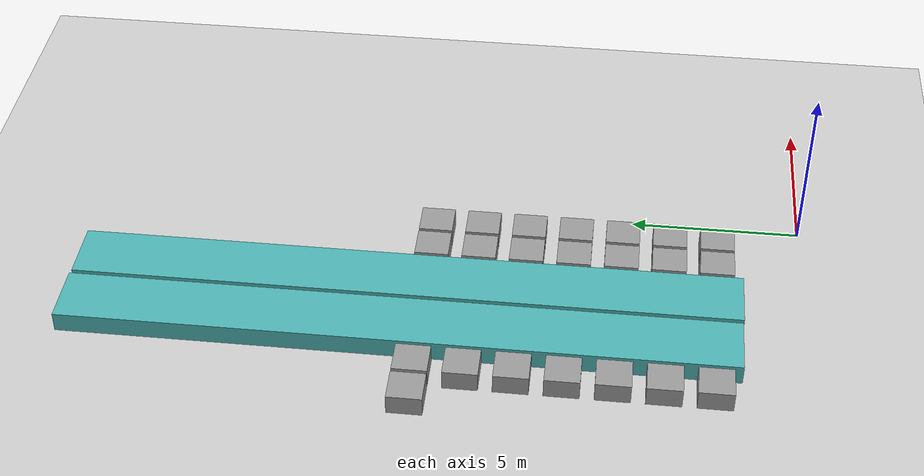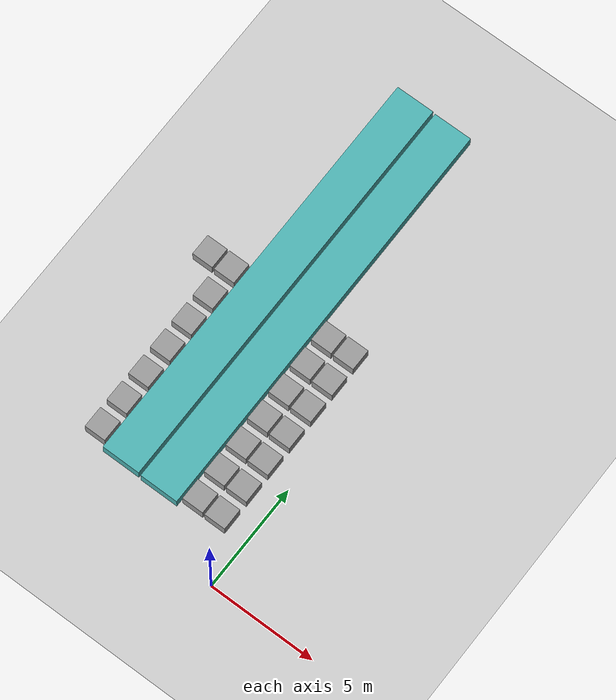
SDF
<sdf version="1.6">
 <world name="default">
  <model name="ground_plane">
   <static>1</static>
   <link name="link">
    <collision name="collision">
     <geometry><plane><normal>0 0 1</normal><size>100 100</size></plane></geometry>
     <surface>
      <contact><collide_bitmask>65535</collide_bitmask></contact>
      <friction><ode><mu>100</mu><mu2>50</mu2></ode></friction>
     </surface>
    </collision>
    <visual name="visual">
     <cast_shadows>0</cast_shadows>
     <geometry><plane><normal>0 0 1</normal><size>100 100</size></plane></geometry>
     <material>
      <script><uri>file://media/materials/scripts/gazebo.material</uri><name>Gazebo/Grey</name></script>
     </material>
    </visual>
   </link>
  </model>
  <model name="Estufa-objetos">
   <link name="link_0_clone_0">
    <inertial>
     <mass>1</mass>
     <inertia>
      <ixx>0.166667</ixx>
      <ixy>0</ixy>
      <ixz>0</ixz>
      <iyy>0.166667</iyy>
      <iyz>0</iyz>
      <izz>0.166667</izz>
     </inertia>
    </inertial>
    <pose>-1.4 -2.5 0.5 0 -0 0</pose>
    <visual name="visual">
     <geometry><box><size>1 1 0.6</size></box></geometry>
     <material>
      <lighting>1</lighting>
      <script><uri>file://media/materials/scripts/gazebo.material</uri><name>Gazebo/Grey</name></script>
      <shader type="vertex"><normal_map>__default__</normal_map></shader>
      <ambient>0.3 0.3 0.3 1</ambient>
      <diffuse>0.7 0.7 0.7 1</diffuse>
      <specular>0.01 0.01 0.01 1</specular>
      <emissive>0 0 0 1</emissive>
     </material>
    </visual>
    <collision name="collision">
     <geometry><box><size>1 1 0.6</size></box></geometry>
     <surface>
      <friction>
       <ode><mu>1</mu><mu2>1</mu2><fdir1>0 0 0</fdir1><slip1>0</slip1><slip2>0</slip2></ode>
       <torsional>
        <coefficient>1</coefficient>
        <patch_radius>0</patch_radius>
        <surface_radius>0</surface_radius>
        <use_patch_radius>1</use_patch_radius>
        <ode><slip>0</slip></ode>
       </torsional>
      </friction>
      <bounce><restitution_coefficient>0</restitution_coefficient><threshold>1e+06</threshold></bounce>
      <contact>
       <collide_without_contact>0</collide_without_contact>
       <collide_without_contact_bitmask>1</collide_without_contact_bitmask>
       <collide_bitmask>1</collide_bitmask>
       <ode>
        <soft_cfm>0</soft_cfm>
        <soft_erp>0.2</soft_erp>
        <kp>1e+13</kp>
        <kd>1</kd>
        <max_vel>0.01</max_vel>
        <min_depth>0</min_depth>
       </ode>
       <bullet>
        <split_impulse>1</split_impulse>
        <split_impulse_penetration_threshold>-0.01</split_impulse_penetration_threshold>
        <soft_cfm>0</soft_cfm>
        <soft_erp>0.2</soft_erp>
        <kp>1e+13</kp>
        <kd>1</kd>
       </bullet>
      </contact>
     </surface>
    </collision>
   </link>
   <link name="link_0_clone_1">
    <inertial>
     <mass>1</mass>
     <inertia>
      <ixx>0.166667</ixx>
      <ixy>0</ixy>
      <ixz>0</ixz>
      <iyy>0.166667</iyy>
      <iyz>0</iyz>
      <izz>0.166667</izz>
     </inertia>
    </inertial>
    <pose>-2.5 -2.5 0.5 0 -0 0</pose>
    <visual name="visual">
     <geometry><box><size>1 1 0.6</size></box></geometry>
     <material>
      <lighting>1</lighting>
      <script><uri>file://media/materials/scripts/gazebo.material</uri><name>Gazebo/Grey</name></script>
      <shader type="vertex"><normal_map>__default__</normal_map></shader>
      <ambient>0.3 0.3 0.3 1</ambient>
      <diffuse>0.7 0.7 0.7 1</diffuse>
      <specular>0.01 0.01 0.01 1</specular>
      <emissive>0 0 0 1</emissive>
     </material>
    </visual>
    <collision name="collision">
     <geometry><box><size>1 1 0.6</size></box></geometry>
     <surface>
      <friction>
       <ode><mu>1</mu><mu2>1</mu2><fdir1>0 0 0</fdir1><slip1>0</slip1><slip2>0</slip2></ode>
       <torsional>
        <coefficient>1</coefficient>
        <patch_radius>0</patch_radius>
        <surface_radius>0</surface_radius>
        <use_patch_radius>1</use_patch_radius>
        <ode><slip>0</slip></ode>
       </torsional>
      </friction>
      <bounce><restitution_coefficient>0</restitution_coefficient><threshold>1e+06</threshold></bounce>
      <contact>
       <collide_without_contact>0</collide_without_contact>
       <collide_without_contact_bitmask>1</collide_without_contact_bitmask>
       <collide_bitmask>1</collide_bitmask>
       <ode>
        <soft_cfm>0</soft_cfm>
        <soft_erp>0.2</soft_erp>
        <kp>1e+13</kp>
        <kd>1</kd>
        <max_vel>0.01</max_vel>
        <min_depth>0</min_depth>
       </ode>
       <bullet>
        <split_impulse>1</split_impulse>
        <split_impulse_penetration_threshold>-0.01</split_impulse_penetration_threshold>
        <soft_cfm>0</soft_cfm>
        <soft_erp>0.2</soft_erp>
        <kp>1e+13</kp>
        <kd>1</kd>
       </bullet>
      </contact>
     </surface>
    </collision>
   </link>
   <link name="link_0_clone_3_clone">
    <inertial>
     <mass>1</mass>
     <inertia>
      <ixx>0.166667</ixx>
      <ixy>0</ixy>
      <ixz>0</ixz>
      <iyy>0.166667</iyy>
      <iyz>0</iyz>
      <izz>0.166667</izz>
     </inertia>
    </inertial>
    <pose>-4 6.5 0.5 0 -0 0</pose>
    <visual name="visual">
     <geometry><box><size>1.8 19.5 0.6</size></box></geometry>
     <material>
      <lighting>1</lighting>
      <script><uri>file://media/materials/scripts/gazebo.material</uri><name>Gazebo/Grey</name></script>
      <shader type="vertex"><normal_map>__default__</normal_map></shader>
      <ambient>0.3 0.7 0.7 1</ambient>
      <diffuse>0.7 0.7 0.7 1</diffuse>
      <specular>0.01 0.01 0.01 1</specular>
      <emissive>0 0 0 1</emissive>
     </material>
    </visual>
    <collision name="collision">
     <geometry><box><size>1.8 19.5 0.6</size></box></geometry>
     <surface>
      <friction>
       <ode><mu>1</mu><mu2>1</mu2><fdir1>0 0 0</fdir1><slip1>0</slip1><slip2>0</slip2></ode>
       <torsional>
        <coefficient>1</coefficient>
        <patch_radius>0</patch_radius>
        <surface_radius>0</surface_radius>
        <use_patch_radius>1</use_patch_radius>
        <ode><slip>0</slip></ode>
       </torsional>
      </friction>
      <bounce><restitution_coefficient>0</restitution_coefficient><threshold>1e+06</threshold></bounce>
      <contact>
       <collide_without_contact>0</collide_without_contact>
       <collide_without_contact_bitmask>1</collide_without_contact_bitmask>
       <collide_bitmask>1</collide_bitmask>
       <ode>
        <soft_cfm>0</soft_cfm>
        <soft_erp>0.2</soft_erp>
        <kp>1e+13</kp>
        <kd>1</kd>
        <max_vel>0.01</max_vel>
        <min_depth>0</min_depth>
       </ode>
       <bullet>
        <split_impulse>1</split_impulse>
        <split_impulse_penetration_threshold>-0.01</split_impulse_penetration_threshold>
        <soft_cfm>0</soft_cfm>
        <soft_erp>0.2</soft_erp>
        <kp>1e+13</kp>
        <kd>1</kd>
       </bullet>
      </contact>
     </surface>
    </collision>
   </link>
   <link name="link_0_clone_clone_1">
    <inertial>
     <mass>1</mass>
     <inertia>
      <ixx>0.166667</ixx>
      <ixy>0</ixy>
      <ixz>0</ixz>
      <iyy>0.166667</iyy>
      <iyz>0</iyz>
      <izz>0.166667</izz>
     </inertia>
    </inertial>
    <pose>-1.4 -1.1 0.5 0 -0 0</pose>
    <visual name="visual">
     <geometry><box><size>1 1 0.6</size></box></geometry>
     <material>
      <lighting>1</lighting>
      <script><uri>file://media/materials/scripts/gazebo.material</uri><name>Gazebo/Grey</name></script>
      <shader type="vertex"><normal_map>__default__</normal_map></shader>
      <ambient>0.3 0.3 0.3 1</ambient>
      <diffuse>0.7 0.7 0.7 1</diffuse>
      <specular>0.01 0.01 0.01 1</specular>
      <emissive>0 0 0 1</emissive>
     </material>
    </visual>
    <collision name="collision">
     <geometry><box><size>1 1 0.6</size></box></geometry>
     <surface>
      <friction>
       <ode><mu>1</mu><mu2>1</mu2><fdir1>0 0 0</fdir1><slip1>0</slip1><slip2>0</slip2></ode>
       <torsional>
        <coefficient>1</coefficient>
        <patch_radius>0</patch_radius>
        <surface_radius>0</surface_radius>
        <use_patch_radius>1</use_patch_radius>
        <ode><slip>0</slip></ode>
       </torsional>
      </friction>
      <bounce><restitution_coefficient>0</restitution_coefficient><threshold>1e+06</threshold></bounce>
      <contact>
       <collide_without_contact>0</collide_without_contact>
       <collide_without_contact_bitmask>1</collide_without_contact_bitmask>
       <collide_bitmask>1</collide_bitmask>
       <ode>
        <soft_cfm>0</soft_cfm>
        <soft_erp>0.2</soft_erp>
        <kp>1e+13</kp>
        <kd>1</kd>
        <max_vel>0.01</max_vel>
        <min_depth>0</min_depth>
       </ode>
       <bullet>
        <split_impulse>1</split_impulse>
        <split_impulse_penetration_threshold>-0.01</split_impulse_penetration_threshold>
        <soft_cfm>0</soft_cfm>
        <soft_erp>0.2</soft_erp>
        <kp>1e+13</kp>
        <kd>1</kd>
       </bullet>
      </contact>
     </surface>
    </collision>
   </link>
   <link name="link_0_clone_clone_10">
    <inertial>
     <mass>1</mass>
     <inertia>
      <ixx>0.166667</ixx>
      <ixy>0</ixy>
      <ixz>0</ixz>
      <iyy>0.166667</iyy>
      <iyz>0</iyz>
      <izz>0.166667</izz>
     </inertia>
    </inertial>
    <pose>-1.4 1.7 0.5 0 -0 0</pose>
    <visual name="visual">
     <geometry><box><size>1 1 0.6</size></box></geometry>
     <material>
      <lighting>1</lighting>
      <script><uri>file://media/materials/scripts/gazebo.material</uri><name>Gazebo/Grey</name></script>
      <shader type="vertex"><normal_map>__default__</normal_map></shader>
      <ambient>0.3 0.3 0.3 1</ambient>
      <diffuse>0.7 0.7 0.7 1</diffuse>
      <specular>0.01 0.01 0.01 1</specular>
      <emissive>0 0 0 1</emissive>
     </material>
    </visual>
    <collision name="collision">
     <geometry><box><size>1 1 0.6</size></box></geometry>
     <surface>
      <friction>
       <ode><mu>1</mu><mu2>1</mu2><fdir1>0 0 0</fdir1><slip1>0</slip1><slip2>0</slip2></ode>
       <torsional>
        <coefficient>1</coefficient>
        <patch_radius>0</patch_radius>
        <surface_radius>0</surface_radius>
        <use_patch_radius>1</use_patch_radius>
        <ode><slip>0</slip></ode>
       </torsional>
      </friction>
      <bounce><restitution_coefficient>0</restitution_coefficient><threshold>1e+06</threshold></bounce>
      <contact>
       <collide_without_contact>0</collide_without_contact>
       <collide_without_contact_bitmask>1</collide_without_contact_bitmask>
       <collide_bitmask>1</collide_bitmask>
       <ode>
        <soft_cfm>0</soft_cfm>
        <soft_erp>0.2</soft_erp>
        <kp>1e+13</kp>
        <kd>1</kd>
        <max_vel>0.01</max_vel>
        <min_depth>0</min_depth>
       </ode>
       <bullet>
        <split_impulse>1</split_impulse>
        <split_impulse_penetration_threshold>-0.01</split_impulse_penetration_threshold>
        <soft_cfm>0</soft_cfm>
        <soft_erp>0.2</soft_erp>
        <kp>1e+13</kp>
        <kd>1</kd>
       </bullet>
      </contact>
     </surface>
    </collision>
   </link>
   <link name="link_0_clone_clone_11">
    <inertial>
     <mass>1</mass>
     <inertia>
      <ixx>0.166667</ixx>
      <ixy>0</ixy>
      <ixz>0</ixz>
      <iyy>0.166667</iyy>
      <iyz>0</iyz>
      <izz>0.166667</izz>
     </inertia>
    </inertial>
    <pose>-2.5 1.7 0.5 0 -0 0</pose>
    <visual name="visual">
     <geometry><box><size>1 1 0.6</size></box></geometry>
     <material>
      <lighting>1</lighting>
      <script><uri>file://media/materials/scripts/gazebo.material</uri><name>Gazebo/Grey</name></script>
      <shader type="vertex"><normal_map>__default__</normal_map></shader>
      <ambient>0.3 0.3 0.3 1</ambient>
      <diffuse>0.7 0.7 0.7 1</diffuse>
      <specular>0.01 0.01 0.01 1</specular>
      <emissive>0 0 0 1</emissive>
     </material>
    </visual>
    <collision name="collision">
     <geometry><box><size>1 1 0.6</size></box></geometry>
     <surface>
      <friction>
       <ode><mu>1</mu><mu2>1</mu2><fdir1>0 0 0</fdir1><slip1>0</slip1><slip2>0</slip2></ode>
       <torsional>
        <coefficient>1</coefficient>
        <patch_radius>0</patch_radius>
        <surface_radius>0</surface_radius>
        <use_patch_radius>1</use_patch_radius>
        <ode><slip>0</slip></ode>
       </torsional>
      </friction>
      <bounce><restitution_coefficient>0</restitution_coefficient><threshold>1e+06</threshold></bounce>
      <contact>
       <collide_without_contact>0</collide_without_contact>
       <collide_without_contact_bitmask>1</collide_without_contact_bitmask>
       <collide_bitmask>1</collide_bitmask>
       <ode>
        <soft_cfm>0</soft_cfm>
        <soft_erp>0.2</soft_erp>
        <kp>1e+13</kp>
        <kd>1</kd>
        <max_vel>0.01</max_vel>
        <min_depth>0</min_depth>
       </ode>
       <bullet>
        <split_impulse>1</split_impulse>
        <split_impulse_penetration_threshold>-0.01</split_impulse_penetration_threshold>
        <soft_cfm>0</soft_cfm>
        <soft_erp>0.2</soft_erp>
        <kp>1e+13</kp>
        <kd>1</kd>
       </bullet>
      </contact>
     </surface>
    </collision>
   </link>
   <link name="link_0_clone_clone_14">
    <inertial>
     <mass>1</mass>
     <inertia>
      <ixx>0.166667</ixx>
      <ixy>0</ixy>
      <ixz>0</ixz>
      <iyy>0.166667</iyy>
      <iyz>0</iyz>
      <izz>0.166667</izz>
     </inertia>
    </inertial>
    <pose>-1.4 3.1 0.5 0 -0 0</pose>
    <visual name="visual">
     <geometry><box><size>1 1 0.6</size></box></geometry>
     <material>
      <lighting>1</lighting>
      <script><uri>file://media/materials/scripts/gazebo.material</uri><name>Gazebo/Grey</name></script>
      <shader type="vertex"><normal_map>__default__</normal_map></shader>
      <ambient>0.3 0.3 0.3 1</ambient>
      <diffuse>0.7 0.7 0.7 1</diffuse>
      <specular>0.01 0.01 0.01 1</specular>
      <emissive>0 0 0 1</emissive>
     </material>
    </visual>
    <collision name="collision">
     <geometry><box><size>1 1 0.6</size></box></geometry>
     <surface>
      <friction>
       <ode><mu>1</mu><mu2>1</mu2><fdir1>0 0 0</fdir1><slip1>0</slip1><slip2>0</slip2></ode>
       <torsional>
        <coefficient>1</coefficient>
        <patch_radius>0</patch_radius>
        <surface_radius>0</surface_radius>
        <use_patch_radius>1</use_patch_radius>
        <ode><slip>0</slip></ode>
       </torsional>
      </friction>
      <bounce><restitution_coefficient>0</restitution_coefficient><threshold>1e+06</threshold></bounce>
      <contact>
       <collide_without_contact>0</collide_without_contact>
       <collide_without_contact_bitmask>1</collide_without_contact_bitmask>
       <collide_bitmask>1</collide_bitmask>
       <ode>
        <soft_cfm>0</soft_cfm>
        <soft_erp>0.2</soft_erp>
        <kp>1e+13</kp>
        <kd>1</kd>
        <max_vel>0.01</max_vel>
        <min_depth>0</min_depth>
       </ode>
       <bullet>
        <split_impulse>1</split_impulse>
        <split_impulse_penetration_threshold>-0.01</split_impulse_penetration_threshold>
        <soft_cfm>0</soft_cfm>
        <soft_erp>0.2</soft_erp>
        <kp>1e+13</kp>
        <kd>1</kd>
       </bullet>
      </contact>
     </surface>
    </collision>
   </link>
   <link name="link_0_clone_clone_15">
    <inertial>
     <mass>1</mass>
     <inertia>
      <ixx>0.166667</ixx>
      <ixy>0</ixy>
      <ixz>0</ixz>
      <iyy>0.166667</iyy>
      <iyz>0</iyz>
      <izz>0.166667</izz>
     </inertia>
    </inertial>
    <pose>-2.5 3.1 0.5 0 -0 0</pose>
    <visual name="visual">
     <geometry><box><size>1 1 0.6</size></box></geometry>
     <material>
      <lighting>1</lighting>
      <script><uri>file://media/materials/scripts/gazebo.material</uri><name>Gazebo/Grey</name></script>
      <shader type="vertex"><normal_map>__default__</normal_map></shader>
      <ambient>0.3 0.3 0.3 1</ambient>
      <diffuse>0.7 0.7 0.7 1</diffuse>
      <specular>0.01 0.01 0.01 1</specular>
      <emissive>0 0 0 1</emissive>
     </material>
    </visual>
    <collision name="collision">
     <geometry><box><size>1 1 0.6</size></box></geometry>
     <surface>
      <friction>
       <ode><mu>1</mu><mu2>1</mu2><fdir1>0 0 0</fdir1><slip1>0</slip1><slip2>0</slip2></ode>
       <torsional>
        <coefficient>1</coefficient>
        <patch_radius>0</patch_radius>
        <surface_radius>0</surface_radius>
        <use_patch_radius>1</use_patch_radius>
        <ode><slip>0</slip></ode>
       </torsional>
      </friction>
      <bounce><restitution_coefficient>0</restitution_coefficient><threshold>1e+06</threshold></bounce>
      <contact>
       <collide_without_contact>0</collide_without_contact>
       <collide_without_contact_bitmask>1</collide_without_contact_bitmask>
       <collide_bitmask>1</collide_bitmask>
       <ode>
        <soft_cfm>0</soft_cfm>
        <soft_erp>0.2</soft_erp>
        <kp>1e+13</kp>
        <kd>1</kd>
        <max_vel>0.01</max_vel>
        <min_depth>0</min_depth>
       </ode>
       <bullet>
        <split_impulse>1</split_impulse>
        <split_impulse_penetration_threshold>-0.01</split_impulse_penetration_threshold>
        <soft_cfm>0</soft_cfm>
        <soft_erp>0.2</soft_erp>
        <kp>1e+13</kp>
        <kd>1</kd>
       </bullet>
      </contact>
     </surface>
    </collision>
   </link>
   <link name="link_0_clone_clone_18">
    <inertial>
     <mass>1</mass>
     <inertia>
      <ixx>0.166667</ixx>
      <ixy>0</ixy>
      <ixz>0</ixz>
      <iyy>0.166667</iyy>
      <iyz>0</iyz>
      <izz>0.166667</izz>
     </inertia>
    </inertial>
    <pose>-1.4 4.5 0.5 0 -0 0</pose>
    <visual name="visual">
     <geometry><box><size>1 1 0.6</size></box></geometry>
     <material>
      <lighting>1</lighting>
      <script><uri>file://media/materials/scripts/gazebo.material</uri><name>Gazebo/Grey</name></script>
      <shader type="vertex"><normal_map>__default__</normal_map></shader>
      <ambient>0.3 0.3 0.3 1</ambient>
      <diffuse>0.7 0.7 0.7 1</diffuse>
      <specular>0.01 0.01 0.01 1</specular>
      <emissive>0 0 0 1</emissive>
     </material>
    </visual>
    <collision name="collision">
     <geometry><box><size>1 1 0.6</size></box></geometry>
     <surface>
      <friction>
       <ode><mu>1</mu><mu2>1</mu2><fdir1>0 0 0</fdir1><slip1>0</slip1><slip2>0</slip2></ode>
       <torsional>
        <coefficient>1</coefficient>
        <patch_radius>0</patch_radius>
        <surface_radius>0</surface_radius>
        <use_patch_radius>1</use_patch_radius>
        <ode><slip>0</slip></ode>
       </torsional>
      </friction>
      <bounce><restitution_coefficient>0</restitution_coefficient><threshold>1e+06</threshold></bounce>
      <contact>
       <collide_without_contact>0</collide_without_contact>
       <collide_without_contact_bitmask>1</collide_without_contact_bitmask>
       <collide_bitmask>1</collide_bitmask>
       <ode>
        <soft_cfm>0</soft_cfm>
        <soft_erp>0.2</soft_erp>
        <kp>1e+13</kp>
        <kd>1</kd>
        <max_vel>0.01</max_vel>
        <min_depth>0</min_depth>
       </ode>
       <bullet>
        <split_impulse>1</split_impulse>
        <split_impulse_penetration_threshold>-0.01</split_impulse_penetration_threshold>
        <soft_cfm>0</soft_cfm>
        <soft_erp>0.2</soft_erp>
        <kp>1e+13</kp>
        <kd>1</kd>
       </bullet>
      </contact>
     </surface>
    </collision>
   </link>
   <link name="link_0_clone_clone_19">
    <inertial>
     <mass>1</mass>
     <inertia>
      <ixx>0.166667</ixx>
      <ixy>0</ixy>
      <ixz>0</ixz>
      <iyy>0.166667</iyy>
      <iyz>0</iyz>
      <izz>0.166667</izz>
     </inertia>
    </inertial>
    <pose>-2.5 4.5 0.5 0 -0 0</pose>
    <visual name="visual">
     <geometry><box><size>1 1 0.6</size></box></geometry>
     <material>
      <lighting>1</lighting>
      <script><uri>file://media/materials/scripts/gazebo.material</uri><name>Gazebo/Grey</name></script>
      <shader type="vertex"><normal_map>__default__</normal_map></shader>
      <ambient>0.3 0.3 0.3 1</ambient>
      <diffuse>0.7 0.7 0.7 1</diffuse>
      <specular>0.01 0.01 0.01 1</specular>
      <emissive>0 0 0 1</emissive>
     </material>
    </visual>
    <collision name="collision">
     <geometry><box><size>1 1 0.6</size></box></geometry>
     <surface>
      <friction>
       <ode><mu>1</mu><mu2>1</mu2><fdir1>0 0 0</fdir1><slip1>0</slip1><slip2>0</slip2></ode>
       <torsional>
        <coefficient>1</coefficient>
        <patch_radius>0</patch_radius>
        <surface_radius>0</surface_radius>
        <use_patch_radius>1</use_patch_radius>
        <ode><slip>0</slip></ode>
       </torsional>
      </friction>
      <bounce><restitution_coefficient>0</restitution_coefficient><threshold>1e+06</threshold></bounce>
      <contact>
       <collide_without_contact>0</collide_without_contact>
       <collide_without_contact_bitmask>1</collide_without_contact_bitmask>
       <collide_bitmask>1</collide_bitmask>
       <ode>
        <soft_cfm>0</soft_cfm>
        <soft_erp>0.2</soft_erp>
        <kp>1e+13</kp>
        <kd>1</kd>
        <max_vel>0.01</max_vel>
        <min_depth>0</min_depth>
       </ode>
       <bullet>
        <split_impulse>1</split_impulse>
        <split_impulse_penetration_threshold>-0.01</split_impulse_penetration_threshold>
        <soft_cfm>0</soft_cfm>
        <soft_erp>0.2</soft_erp>
        <kp>1e+13</kp>
        <kd>1</kd>
       </bullet>
      </contact>
     </surface>
    </collision>
   </link>
   <link name="link_0_clone_clone_22">
    <inertial>
     <mass>1</mass>
     <inertia>
      <ixx>0.166667</ixx>
      <ixy>0</ixy>
      <ixz>0</ixz>
      <iyy>0.166667</iyy>
      <iyz>0</iyz>
      <izz>0.166667</izz>
     </inertia>
    </inertial>
    <pose>-1.4 5.9 0.5 0 -0 0</pose>
    <visual name="visual">
     <geometry><box><size>1 1 0.6</size></box></geometry>
     <material>
      <lighting>1</lighting>
      <script><uri>file://media/materials/scripts/gazebo.material</uri><name>Gazebo/Grey</name></script>
      <shader type="vertex"><normal_map>__default__</normal_map></shader>
      <ambient>0.3 0.3 0.3 1</ambient>
      <diffuse>0.7 0.7 0.7 1</diffuse>
      <specular>0.01 0.01 0.01 1</specular>
      <emissive>0 0 0 1</emissive>
     </material>
    </visual>
    <collision name="collision">
     <geometry><box><size>1 1 0.6</size></box></geometry>
     <surface>
      <friction>
       <ode><mu>1</mu><mu2>1</mu2><fdir1>0 0 0</fdir1><slip1>0</slip1><slip2>0</slip2></ode>
       <torsional>
        <coefficient>1</coefficient>
        <patch_radius>0</patch_radius>
        <surface_radius>0</surface_radius>
        <use_patch_radius>1</use_patch_radius>
        <ode><slip>0</slip></ode>
       </torsional>
      </friction>
      <bounce><restitution_coefficient>0</restitution_coefficient><threshold>1e+06</threshold></bounce>
      <contact>
       <collide_without_contact>0</collide_without_contact>
       <collide_without_contact_bitmask>1</collide_without_contact_bitmask>
       <collide_bitmask>1</collide_bitmask>
       <ode>
        <soft_cfm>0</soft_cfm>
        <soft_erp>0.2</soft_erp>
        <kp>1e+13</kp>
        <kd>1</kd>
        <max_vel>0.01</max_vel>
        <min_depth>0</min_depth>
       </ode>
       <bullet>
        <split_impulse>1</split_impulse>
        <split_impulse_penetration_threshold>-0.01</split_impulse_penetration_threshold>
        <soft_cfm>0</soft_cfm>
        <soft_erp>0.2</soft_erp>
        <kp>1e+13</kp>
        <kd>1</kd>
       </bullet>
      </contact>
     </surface>
    </collision>
   </link>
   <link name="link_0_clone_clone_23">
    <inertial>
     <mass>1</mass>
     <inertia>
      <ixx>0.166667</ixx>
      <ixy>0</ixy>
      <ixz>0</ixz>
      <iyy>0.166667</iyy>
      <iyz>0</iyz>
      <izz>0.166667</izz>
     </inertia>
    </inertial>
    <pose>-2.5 5.9 0.5 0 -0 0</pose>
    <visual name="visual">
     <geometry><box><size>1 1 0.6</size></box></geometry>
     <material>
      <lighting>1</lighting>
      <script><uri>file://media/materials/scripts/gazebo.material</uri><name>Gazebo/Grey</name></script>
      <shader type="vertex"><normal_map>__default__</normal_map></shader>
      <ambient>0.3 0.3 0.3 1</ambient>
      <diffuse>0.7 0.7 0.7 1</diffuse>
      <specular>0.01 0.01 0.01 1</specular>
      <emissive>0 0 0 1</emissive>
     </material>
    </visual>
    <collision name="collision">
     <geometry><box><size>1 1 0.6</size></box></geometry>
     <surface>
      <friction>
       <ode><mu>1</mu><mu2>1</mu2><fdir1>0 0 0</fdir1><slip1>0</slip1><slip2>0</slip2></ode>
       <torsional>
        <coefficient>1</coefficient>
        <patch_radius>0</patch_radius>
        <surface_radius>0</surface_radius>
        <use_patch_radius>1</use_patch_radius>
        <ode><slip>0</slip></ode>
       </torsional>
      </friction>
      <bounce><restitution_coefficient>0</restitution_coefficient><threshold>1e+06</threshold></bounce>
      <contact>
       <collide_without_contact>0</collide_without_contact>
       <collide_without_contact_bitmask>1</collide_without_contact_bitmask>
       <collide_bitmask>1</collide_bitmask>
       <ode>
        <soft_cfm>0</soft_cfm>
        <soft_erp>0.2</soft_erp>
        <kp>1e+13</kp>
        <kd>1</kd>
        <max_vel>0.01</max_vel>
        <min_depth>0</min_depth>
       </ode>
       <bullet>
        <split_impulse>1</split_impulse>
        <split_impulse_penetration_threshold>-0.01</split_impulse_penetration_threshold>
        <soft_cfm>0</soft_cfm>
        <soft_erp>0.2</soft_erp>
        <kp>1e+13</kp>
        <kd>1</kd>
       </bullet>
      </contact>
     </surface>
    </collision>
   </link>
   <link name="link_0_clone_clone_3">
    <inertial>
     <mass>1</mass>
     <inertia>
      <ixx>0.166667</ixx>
      <ixy>0</ixy>
      <ixz>0</ixz>
      <iyy>0.166667</iyy>
      <iyz>0</iyz>
      <izz>0.166667</izz>
     </inertia>
    </inertial>
    <pose>-2.5 -1.1 0.5 0 -0 0</pose>
    <visual name="visual">
     <geometry><box><size>1 1 0.6</size></box></geometry>
     <material>
      <lighting>1</lighting>
      <script><uri>file://media/materials/scripts/gazebo.material</uri><name>Gazebo/Grey</name></script>
      <shader type="vertex"><normal_map>__default__</normal_map></shader>
      <ambient>0.3 0.3 0.3 1</ambient>
      <diffuse>0.7 0.7 0.7 1</diffuse>
      <specular>0.01 0.01 0.01 1</specular>
      <emissive>0 0 0 1</emissive>
     </material>
    </visual>
    <collision name="collision">
     <geometry><box><size>1 1 0.6</size></box></geometry>
     <surface>
      <friction>
       <ode><mu>1</mu><mu2>1</mu2><fdir1>0 0 0</fdir1><slip1>0</slip1><slip2>0</slip2></ode>
       <torsional>
        <coefficient>1</coefficient>
        <patch_radius>0</patch_radius>
        <surface_radius>0</surface_radius>
        <use_patch_radius>1</use_patch_radius>
        <ode><slip>0</slip></ode>
       </torsional>
      </friction>
      <bounce><restitution_coefficient>0</restitution_coefficient><threshold>1e+06</threshold></bounce>
      <contact>
       <collide_without_contact>0</collide_without_contact>
       <collide_without_contact_bitmask>1</collide_without_contact_bitmask>
       <collide_bitmask>1</collide_bitmask>
       <ode>
        <soft_cfm>0</soft_cfm>
        <soft_erp>0.2</soft_erp>
        <kp>1e+13</kp>
        <kd>1</kd>
        <max_vel>0.01</max_vel>
        <min_depth>0</min_depth>
       </ode>
       <bullet>
        <split_impulse>1</split_impulse>
        <split_impulse_penetration_threshold>-0.01</split_impulse_penetration_threshold>
        <soft_cfm>0</soft_cfm>
        <soft_erp>0.2</soft_erp>
        <kp>1e+13</kp>
        <kd>1</kd>
       </bullet>
      </contact>
     </surface>
    </collision>
   </link>
   <link name="link_0_clone_clone_6">
    <inertial>
     <mass>1</mass>
     <inertia>
      <ixx>0.166667</ixx>
      <ixy>0</ixy>
      <ixz>0</ixz>
      <iyy>0.166667</iyy>
      <iyz>0</iyz>
      <izz>0.166667</izz>
     </inertia>
    </inertial>
    <pose>-1.4 0.3 0.5 0 -0 0</pose>
    <visual name="visual">
     <geometry><box><size>1 1 0.6</size></box></geometry>
     <material>
      <lighting>1</lighting>
      <script><uri>file://media/materials/scripts/gazebo.material</uri><name>Gazebo/Grey</name></script>
      <shader type="vertex"><normal_map>__default__</normal_map></shader>
      <ambient>0.3 0.3 0.3 1</ambient>
      <diffuse>0.7 0.7 0.7 1</diffuse>
      <specular>0.01 0.01 0.01 1</specular>
      <emissive>0 0 0 1</emissive>
     </material>
    </visual>
    <collision name="collision">
     <geometry><box><size>1 1 0.6</size></box></geometry>
     <surface>
      <friction>
       <ode><mu>1</mu><mu2>1</mu2><fdir1>0 0 0</fdir1><slip1>0</slip1><slip2>0</slip2></ode>
       <torsional>
        <coefficient>1</coefficient>
        <patch_radius>0</patch_radius>
        <surface_radius>0</surface_radius>
        <use_patch_radius>1</use_patch_radius>
        <ode><slip>0</slip></ode>
       </torsional>
      </friction>
      <bounce><restitution_coefficient>0</restitution_coefficient><threshold>1e+06</threshold></bounce>
      <contact>
       <collide_without_contact>0</collide_without_contact>
       <collide_without_contact_bitmask>1</collide_without_contact_bitmask>
       <collide_bitmask>1</collide_bitmask>
       <ode>
        <soft_cfm>0</soft_cfm>
        <soft_erp>0.2</soft_erp>
        <kp>1e+13</kp>
        <kd>1</kd>
        <max_vel>0.01</max_vel>
        <min_depth>0</min_depth>
       </ode>
       <bullet>
        <split_impulse>1</split_impulse>
        <split_impulse_penetration_threshold>-0.01</split_impulse_penetration_threshold>
        <soft_cfm>0</soft_cfm>
        <soft_erp>0.2</soft_erp>
        <kp>1e+13</kp>
        <kd>1</kd>
       </bullet>
      </contact>
     </surface>
    </collision>
   </link>
   <link name="link_0_clone_clone_7">
    <inertial>
     <mass>1</mass>
     <inertia>
      <ixx>0.166667</ixx>
      <ixy>0</ixy>
      <ixz>0</ixz>
      <iyy>0.166667</iyy>
      <iyz>0</iyz>
      <izz>0.166667</izz>
     </inertia>
    </inertial>
    <pose>-2.5 0.3 0.5 0 -0 0</pose>
    <visual name="visual">
     <geometry><box><size>1 1 0.6</size></box></geometry>
     <material>
      <lighting>1</lighting>
      <script><uri>file://media/materials/scripts/gazebo.material</uri><name>Gazebo/Grey</name></script>
      <shader type="vertex"><normal_map>__default__</normal_map></shader>
      <ambient>0.3 0.3 0.3 1</ambient>
      <diffuse>0.7 0.7 0.7 1</diffuse>
      <specular>0.01 0.01 0.01 1</specular>
      <emissive>0 0 0 1</emissive>
     </material>
    </visual>
    <collision name="collision">
     <geometry><box><size>1 1 0.6</size></box></geometry>
     <surface>
      <friction>
       <ode><mu>1</mu><mu2>1</mu2><fdir1>0 0 0</fdir1><slip1>0</slip1><slip2>0</slip2></ode>
       <torsional>
        <coefficient>1</coefficient>
        <patch_radius>0</patch_radius>
        <surface_radius>0</surface_radius>
        <use_patch_radius>1</use_patch_radius>
        <ode><slip>0</slip></ode>
       </torsional>
      </friction>
      <bounce><restitution_coefficient>0</restitution_coefficient><threshold>1e+06</threshold></bounce>
      <contact>
       <collide_without_contact>0</collide_without_contact>
       <collide_without_contact_bitmask>1</collide_without_contact_bitmask>
       <collide_bitmask>1</collide_bitmask>
       <ode>
        <soft_cfm>0</soft_cfm>
        <soft_erp>0.2</soft_erp>
        <kp>1e+13</kp>
        <kd>1</kd>
        <max_vel>0.01</max_vel>
        <min_depth>0</min_depth>
       </ode>
       <bullet>
        <split_impulse>1</split_impulse>
        <split_impulse_penetration_threshold>-0.01</split_impulse_penetration_threshold>
        <soft_cfm>0</soft_cfm>
        <soft_erp>0.2</soft_erp>
        <kp>1e+13</kp>
        <kd>1</kd>
       </bullet>
      </contact>
     </surface>
    </collision>
   </link>
   <static>1</static>
   <pose>0.033468 4.9867 0 0 -0 0</pose>
  </model>
  <model name="Estufa-objetos_1">
   <link name="link_0_clone">
    <inertial>
     <mass>1</mass>
     <inertia>
      <ixx>0.166667</ixx>
      <ixy>0</ixy>
      <ixz>0</ixz>
      <iyy>0.166667</iyy>
      <iyz>0</iyz>
      <izz>0.166667</izz>
     </inertia>
    </inertial>
    <pose>2.5 -2.5 0.5 0 -0 0</pose>
    <visual name="visual">
     <geometry><box><size>1 1 0.6</size></box></geometry>
     <material>
      <lighting>1</lighting>
      <script><uri>file://media/materials/scripts/gazebo.material</uri><name>Gazebo/Grey</name></script>
      <shader type="vertex"><normal_map>__default__</normal_map></shader>
      <ambient>0.3 0.3 0.3 1</ambient>
      <diffuse>0.7 0.7 0.7 1</diffuse>
      <specular>0.01 0.01 0.01 1</specular>
      <emissive>0 0 0 1</emissive>
     </material>
    </visual>
    <collision name="collision">
     <geometry><box><size>1 1 0.6</size></box></geometry>
     <surface>
      <friction>
       <ode><mu>1</mu><mu2>1</mu2><fdir1>0 0 0</fdir1><slip1>0</slip1><slip2>0</slip2></ode>
       <torsional>
        <coefficient>1</coefficient>
        <patch_radius>0</patch_radius>
        <surface_radius>0</surface_radius>
        <use_patch_radius>1</use_patch_radius>
        <ode><slip>0</slip></ode>
       </torsional>
      </friction>
      <bounce><restitution_coefficient>0</restitution_coefficient><threshold>1e+06</threshold></bounce>
      <contact>
       <collide_without_contact>0</collide_without_contact>
       <collide_without_contact_bitmask>1</collide_without_contact_bitmask>
       <collide_bitmask>1</collide_bitmask>
       <ode>
        <soft_cfm>0</soft_cfm>
        <soft_erp>0.2</soft_erp>
        <kp>1e+13</kp>
        <kd>1</kd>
        <max_vel>0.01</max_vel>
        <min_depth>0</min_depth>
       </ode>
       <bullet>
        <split_impulse>1</split_impulse>
        <split_impulse_penetration_threshold>-0.01</split_impulse_penetration_threshold>
        <soft_cfm>0</soft_cfm>
        <soft_erp>0.2</soft_erp>
        <kp>1e+13</kp>
        <kd>1</kd>
       </bullet>
      </contact>
     </surface>
    </collision>
   </link>
   <link name="link_0_clone_3_clone_clone">
    <inertial>
     <mass>1</mass>
     <inertia>
      <ixx>0.166667</ixx>
      <ixy>0</ixy>
      <ixz>0</ixz>
      <iyy>0.166667</iyy>
      <iyz>0</iyz>
      <izz>0.166667</izz>
     </inertia>
    </inertial>
    <pose>4 6.5 0.5 0 -0 0</pose>
    <visual name="visual">
     <geometry><box><size>1.8 19.5 0.6</size></box></geometry>
     <material>
      <lighting>1</lighting>
      <script><uri>file://media/materials/scripts/gazebo.material</uri><name>Gazebo/Grey</name></script>
      <shader type="vertex"><normal_map>__default__</normal_map></shader>
      <ambient>0.3 0.7 0.7 1</ambient>
      <diffuse>0.7 0.7 0.7 1</diffuse>
      <specular>0.01 0.01 0.01 1</specular>
      <emissive>0 0 0 1</emissive>
     </material>
    </visual>
    <collision name="collision">
     <geometry><box><size>1.8 19.5 0.6</size></box></geometry>
     <surface>
      <friction>
       <ode><mu>1</mu><mu2>1</mu2><fdir1>0 0 0</fdir1><slip1>0</slip1><slip2>0</slip2></ode>
       <torsional>
        <coefficient>1</coefficient>
        <patch_radius>0</patch_radius>
        <surface_radius>0</surface_radius>
        <use_patch_radius>1</use_patch_radius>
        <ode><slip>0</slip></ode>
       </torsional>
      </friction>
      <bounce><restitution_coefficient>0</restitution_coefficient><threshold>1e+06</threshold></bounce>
      <contact>
       <collide_without_contact>0</collide_without_contact>
       <collide_without_contact_bitmask>1</collide_without_contact_bitmask>
       <collide_bitmask>1</collide_bitmask>
       <ode>
        <soft_cfm>0</soft_cfm>
        <soft_erp>0.2</soft_erp>
        <kp>1e+13</kp>
        <kd>1</kd>
        <max_vel>0.01</max_vel>
        <min_depth>0</min_depth>
       </ode>
       <bullet>
        <split_impulse>1</split_impulse>
        <split_impulse_penetration_threshold>-0.01</split_impulse_penetration_threshold>
        <soft_cfm>0</soft_cfm>
        <soft_erp>0.2</soft_erp>
        <kp>1e+13</kp>
        <kd>1</kd>
       </bullet>
      </contact>
     </surface>
    </collision>
   </link>
   <link name="link_0_clone_clone">
    <inertial>
     <mass>1</mass>
     <inertia>
      <ixx>0.166667</ixx>
      <ixy>0</ixy>
      <ixz>0</ixz>
      <iyy>0.166667</iyy>
      <iyz>0</iyz>
      <izz>0.166667</izz>
     </inertia>
    </inertial>
    <pose>2.5 -1.1 0.5 0 -0 0</pose>
    <visual name="visual">
     <geometry><box><size>1 1 0.6</size></box></geometry>
     <material>
      <lighting>1</lighting>
      <script><uri>file://media/materials/scripts/gazebo.material</uri><name>Gazebo/Grey</name></script>
      <shader type="vertex"><normal_map>__default__</normal_map></shader>
      <ambient>0.3 0.3 0.3 1</ambient>
      <diffuse>0.7 0.7 0.7 1</diffuse>
      <specular>0.01 0.01 0.01 1</specular>
      <emissive>0 0 0 1</emissive>
     </material>
    </visual>
    <collision name="collision">
     <geometry><box><size>1 1 0.6</size></box></geometry>
     <surface>
      <friction>
       <ode><mu>1</mu><mu2>1</mu2><fdir1>0 0 0</fdir1><slip1>0</slip1><slip2>0</slip2></ode>
       <torsional>
        <coefficient>1</coefficient>
        <patch_radius>0</patch_radius>
        <surface_radius>0</surface_radius>
        <use_patch_radius>1</use_patch_radius>
        <ode><slip>0</slip></ode>
       </torsional>
      </friction>
      <bounce><restitution_coefficient>0</restitution_coefficient><threshold>1e+06</threshold></bounce>
      <contact>
       <collide_without_contact>0</collide_without_contact>
       <collide_without_contact_bitmask>1</collide_without_contact_bitmask>
       <collide_bitmask>1</collide_bitmask>
       <ode>
        <soft_cfm>0</soft_cfm>
        <soft_erp>0.2</soft_erp>
        <kp>1e+13</kp>
        <kd>1</kd>
        <max_vel>0.01</max_vel>
        <min_depth>0</min_depth>
       </ode>
       <bullet>
        <split_impulse>1</split_impulse>
        <split_impulse_penetration_threshold>-0.01</split_impulse_penetration_threshold>
        <soft_cfm>0</soft_cfm>
        <soft_erp>0.2</soft_erp>
        <kp>1e+13</kp>
        <kd>1</kd>
       </bullet>
      </contact>
     </surface>
    </collision>
   </link>
   <link name="link_0_clone_clone_12">
    <inertial>
     <mass>1</mass>
     <inertia>
      <ixx>0.166667</ixx>
      <ixy>0</ixy>
      <ixz>0</ixz>
      <iyy>0.166667</iyy>
      <iyz>0</iyz>
      <izz>0.166667</izz>
     </inertia>
    </inertial>
    <pose>2.5 3.1 0.5 0 -0 0</pose>
    <visual name="visual">
     <geometry><box><size>1 1 0.6</size></box></geometry>
     <material>
      <lighting>1</lighting>
      <script><uri>file://media/materials/scripts/gazebo.material</uri><name>Gazebo/Grey</name></script>
      <shader type="vertex"><normal_map>__default__</normal_map></shader>
      <ambient>0.3 0.3 0.3 1</ambient>
      <diffuse>0.7 0.7 0.7 1</diffuse>
      <specular>0.01 0.01 0.01 1</specular>
      <emissive>0 0 0 1</emissive>
     </material>
    </visual>
    <collision name="collision">
     <geometry><box><size>1 1 0.6</size></box></geometry>
     <surface>
      <friction>
       <ode><mu>1</mu><mu2>1</mu2><fdir1>0 0 0</fdir1><slip1>0</slip1><slip2>0</slip2></ode>
       <torsional>
        <coefficient>1</coefficient>
        <patch_radius>0</patch_radius>
        <surface_radius>0</surface_radius>
        <use_patch_radius>1</use_patch_radius>
        <ode><slip>0</slip></ode>
       </torsional>
      </friction>
      <bounce><restitution_coefficient>0</restitution_coefficient><threshold>1e+06</threshold></bounce>
      <contact>
       <collide_without_contact>0</collide_without_contact>
       <collide_without_contact_bitmask>1</collide_without_contact_bitmask>
       <collide_bitmask>1</collide_bitmask>
       <ode>
        <soft_cfm>0</soft_cfm>
        <soft_erp>0.2</soft_erp>
        <kp>1e+13</kp>
        <kd>1</kd>
        <max_vel>0.01</max_vel>
        <min_depth>0</min_depth>
       </ode>
       <bullet>
        <split_impulse>1</split_impulse>
        <split_impulse_penetration_threshold>-0.01</split_impulse_penetration_threshold>
        <soft_cfm>0</soft_cfm>
        <soft_erp>0.2</soft_erp>
        <kp>1e+13</kp>
        <kd>1</kd>
       </bullet>
      </contact>
     </surface>
    </collision>
   </link>
   <link name="link_0_clone_clone_16">
    <inertial>
     <mass>1</mass>
     <inertia>
      <ixx>0.166667</ixx>
      <ixy>0</ixy>
      <ixz>0</ixz>
      <iyy>0.166667</iyy>
      <iyz>0</iyz>
      <izz>0.166667</izz>
     </inertia>
    </inertial>
    <pose>2.5 4.5 0.5 0 -0 0</pose>
    <visual name="visual">
     <geometry><box><size>1 1 0.6</size></box></geometry>
     <material>
      <lighting>1</lighting>
      <script><uri>file://media/materials/scripts/gazebo.material</uri><name>Gazebo/Grey</name></script>
      <shader type="vertex"><normal_map>__default__</normal_map></shader>
      <ambient>0.3 0.3 0.3 1</ambient>
      <diffuse>0.7 0.7 0.7 1</diffuse>
      <specular>0.01 0.01 0.01 1</specular>
      <emissive>0 0 0 1</emissive>
     </material>
    </visual>
    <collision name="collision">
     <geometry><box><size>1 1 0.6</size></box></geometry>
     <surface>
      <friction>
       <ode><mu>1</mu><mu2>1</mu2><fdir1>0 0 0</fdir1><slip1>0</slip1><slip2>0</slip2></ode>
       <torsional>
        <coefficient>1</coefficient>
        <patch_radius>0</patch_radius>
        <surface_radius>0</surface_radius>
        <use_patch_radius>1</use_patch_radius>
        <ode><slip>0</slip></ode>
       </torsional>
      </friction>
      <bounce><restitution_coefficient>0</restitution_coefficient><threshold>1e+06</threshold></bounce>
      <contact>
       <collide_without_contact>0</collide_without_contact>
       <collide_without_contact_bitmask>1</collide_without_contact_bitmask>
       <collide_bitmask>1</collide_bitmask>
       <ode>
        <soft_cfm>0</soft_cfm>
        <soft_erp>0.2</soft_erp>
        <kp>1e+13</kp>
        <kd>1</kd>
        <max_vel>0.01</max_vel>
        <min_depth>0</min_depth>
       </ode>
       <bullet>
        <split_impulse>1</split_impulse>
        <split_impulse_penetration_threshold>-0.01</split_impulse_penetration_threshold>
        <soft_cfm>0</soft_cfm>
        <soft_erp>0.2</soft_erp>
        <kp>1e+13</kp>
        <kd>1</kd>
       </bullet>
      </contact>
     </surface>
    </collision>
   </link>
   <link name="link_0_clone_clone_20">
    <inertial>
     <mass>1</mass>
     <inertia>
      <ixx>0.166667</ixx>
      <ixy>0</ixy>
      <ixz>0</ixz>
      <iyy>0.166667</iyy>
      <iyz>0</iyz>
      <izz>0.166667</izz>
     </inertia>
    </inertial>
    <pose>2.5 5.9 0.5 0 -0 0</pose>
    <visual name="visual">
     <geometry><box><size>1 1 0.6</size></box></geometry>
     <material>
      <lighting>1</lighting>
      <script><uri>file://media/materials/scripts/gazebo.material</uri><name>Gazebo/Grey</name></script>
      <shader type="vertex"><normal_map>__default__</normal_map></shader>
      <ambient>0.3 0.3 0.3 1</ambient>
      <diffuse>0.7 0.7 0.7 1</diffuse>
      <specular>0.01 0.01 0.01 1</specular>
      <emissive>0 0 0 1</emissive>
     </material>
    </visual>
    <collision name="collision">
     <geometry><box><size>1 1 0.6</size></box></geometry>
     <surface>
      <friction>
       <ode><mu>1</mu><mu2>1</mu2><fdir1>0 0 0</fdir1><slip1>0</slip1><slip2>0</slip2></ode>
       <torsional>
        <coefficient>1</coefficient>
        <patch_radius>0</patch_radius>
        <surface_radius>0</surface_radius>
        <use_patch_radius>1</use_patch_radius>
        <ode><slip>0</slip></ode>
       </torsional>
      </friction>
      <bounce><restitution_coefficient>0</restitution_coefficient><threshold>1e+06</threshold></bounce>
      <contact>
       <collide_without_contact>0</collide_without_contact>
       <collide_without_contact_bitmask>1</collide_without_contact_bitmask>
       <collide_bitmask>1</collide_bitmask>
       <ode>
        <soft_cfm>0</soft_cfm>
        <soft_erp>0.2</soft_erp>
        <kp>1e+13</kp>
        <kd>1</kd>
        <max_vel>0.01</max_vel>
        <min_depth>0</min_depth>
       </ode>
       <bullet>
        <split_impulse>1</split_impulse>
        <split_impulse_penetration_threshold>-0.01</split_impulse_penetration_threshold>
        <soft_cfm>0</soft_cfm>
        <soft_erp>0.2</soft_erp>
        <kp>1e+13</kp>
        <kd>1</kd>
       </bullet>
      </contact>
     </surface>
    </collision>
   </link>
   <link name="link_0_clone_clone_21">
    <inertial>
     <mass>1</mass>
     <inertia>
      <ixx>0.166667</ixx>
      <ixy>0</ixy>
      <ixz>0</ixz>
      <iyy>0.166667</iyy>
      <iyz>0</iyz>
      <izz>0.166667</izz>
     </inertia>
    </inertial>
    <pose>1.4 5.9 0.5 0 -0 0</pose>
    <visual name="visual">
     <geometry><box><size>1 1 0.6</size></box></geometry>
     <material>
      <lighting>1</lighting>
      <script><uri>file://media/materials/scripts/gazebo.material</uri><name>Gazebo/Grey</name></script>
      <shader type="vertex"><normal_map>__default__</normal_map></shader>
      <ambient>0.3 0.3 0.3 1</ambient>
      <diffuse>0.7 0.7 0.7 1</diffuse>
      <specular>0.01 0.01 0.01 1</specular>
      <emissive>0 0 0 1</emissive>
     </material>
    </visual>
    <collision name="collision">
     <geometry><box><size>1 1 0.6</size></box></geometry>
     <surface>
      <friction>
       <ode><mu>1</mu><mu2>1</mu2><fdir1>0 0 0</fdir1><slip1>0</slip1><slip2>0</slip2></ode>
       <torsional>
        <coefficient>1</coefficient>
        <patch_radius>0</patch_radius>
        <surface_radius>0</surface_radius>
        <use_patch_radius>1</use_patch_radius>
        <ode><slip>0</slip></ode>
       </torsional>
      </friction>
      <bounce><restitution_coefficient>0</restitution_coefficient><threshold>1e+06</threshold></bounce>
      <contact>
       <collide_without_contact>0</collide_without_contact>
       <collide_without_contact_bitmask>1</collide_without_contact_bitmask>
       <collide_bitmask>1</collide_bitmask>
       <ode>
        <soft_cfm>0</soft_cfm>
        <soft_erp>0.2</soft_erp>
        <kp>1e+13</kp>
        <kd>1</kd>
        <max_vel>0.01</max_vel>
        <min_depth>0</min_depth>
       </ode>
       <bullet>
        <split_impulse>1</split_impulse>
        <split_impulse_penetration_threshold>-0.01</split_impulse_penetration_threshold>
        <soft_cfm>0</soft_cfm>
        <soft_erp>0.2</soft_erp>
        <kp>1e+13</kp>
        <kd>1</kd>
       </bullet>
      </contact>
     </surface>
    </collision>
   </link>
   <link name="link_0_clone_clone_4">
    <inertial>
     <mass>1</mass>
     <inertia>
      <ixx>0.166667</ixx>
      <ixy>0</ixy>
      <ixz>0</ixz>
      <iyy>0.166667</iyy>
      <iyz>0</iyz>
      <izz>0.166667</izz>
     </inertia>
    </inertial>
    <pose>2.5 0.3 0.5 0 -0 0</pose>
    <visual name="visual">
     <geometry><box><size>1 1 0.6</size></box></geometry>
     <material>
      <lighting>1</lighting>
      <script><uri>file://media/materials/scripts/gazebo.material</uri><name>Gazebo/Grey</name></script>
      <shader type="vertex"><normal_map>__default__</normal_map></shader>
      <ambient>0.3 0.3 0.3 1</ambient>
      <diffuse>0.7 0.7 0.7 1</diffuse>
      <specular>0.01 0.01 0.01 1</specular>
      <emissive>0 0 0 1</emissive>
     </material>
    </visual>
    <collision name="collision">
     <geometry><box><size>1 1 0.6</size></box></geometry>
     <surface>
      <friction>
       <ode><mu>1</mu><mu2>1</mu2><fdir1>0 0 0</fdir1><slip1>0</slip1><slip2>0</slip2></ode>
       <torsional>
        <coefficient>1</coefficient>
        <patch_radius>0</patch_radius>
        <surface_radius>0</surface_radius>
        <use_patch_radius>1</use_patch_radius>
        <ode><slip>0</slip></ode>
       </torsional>
      </friction>
      <bounce><restitution_coefficient>0</restitution_coefficient><threshold>1e+06</threshold></bounce>
      <contact>
       <collide_without_contact>0</collide_without_contact>
       <collide_without_contact_bitmask>1</collide_without_contact_bitmask>
       <collide_bitmask>1</collide_bitmask>
       <ode>
        <soft_cfm>0</soft_cfm>
        <soft_erp>0.2</soft_erp>
        <kp>1e+13</kp>
        <kd>1</kd>
        <max_vel>0.01</max_vel>
        <min_depth>0</min_depth>
       </ode>
       <bullet>
        <split_impulse>1</split_impulse>
        <split_impulse_penetration_threshold>-0.01</split_impulse_penetration_threshold>
        <soft_cfm>0</soft_cfm>
        <soft_erp>0.2</soft_erp>
        <kp>1e+13</kp>
        <kd>1</kd>
       </bullet>
      </contact>
     </surface>
    </collision>
   </link>
   <link name="link_0_clone_clone_8">
    <inertial>
     <mass>1</mass>
     <inertia>
      <ixx>0.166667</ixx>
      <ixy>0</ixy>
      <ixz>0</ixz>
      <iyy>0.166667</iyy>
      <iyz>0</iyz>
      <izz>0.166667</izz>
     </inertia>
    </inertial>
    <pose>2.5 1.7 0.5 0 -0 0</pose>
    <visual name="visual">
     <geometry><box><size>1 1 0.6</size></box></geometry>
     <material>
      <lighting>1</lighting>
      <script><uri>file://media/materials/scripts/gazebo.material</uri><name>Gazebo/Grey</name></script>
      <shader type="vertex"><normal_map>__default__</normal_map></shader>
      <ambient>0.3 0.3 0.3 1</ambient>
      <diffuse>0.7 0.7 0.7 1</diffuse>
      <specular>0.01 0.01 0.01 1</specular>
      <emissive>0 0 0 1</emissive>
     </material>
    </visual>
    <collision name="collision">
     <geometry><box><size>1 1 0.6</size></box></geometry>
     <surface>
      <friction>
       <ode><mu>1</mu><mu2>1</mu2><fdir1>0 0 0</fdir1><slip1>0</slip1><slip2>0</slip2></ode>
       <torsional>
        <coefficient>1</coefficient>
        <patch_radius>0</patch_radius>
        <surface_radius>0</surface_radius>
        <use_patch_radius>1</use_patch_radius>
        <ode><slip>0</slip></ode>
       </torsional>
      </friction>
      <bounce><restitution_coefficient>0</restitution_coefficient><threshold>1e+06</threshold></bounce>
      <contact>
       <collide_without_contact>0</collide_without_contact>
       <collide_without_contact_bitmask>1</collide_without_contact_bitmask>
       <collide_bitmask>1</collide_bitmask>
       <ode>
        <soft_cfm>0</soft_cfm>
        <soft_erp>0.2</soft_erp>
        <kp>1e+13</kp>
        <kd>1</kd>
        <max_vel>0.01</max_vel>
        <min_depth>0</min_depth>
       </ode>
       <bullet>
        <split_impulse>1</split_impulse>
        <split_impulse_penetration_threshold>-0.01</split_impulse_penetration_threshold>
        <soft_cfm>0</soft_cfm>
        <soft_erp>0.2</soft_erp>
        <kp>1e+13</kp>
        <kd>1</kd>
       </bullet>
      </contact>
     </surface>
    </collision>
   </link>
   <static>1</static>
   <pose>-9.89574 5.02017 0 0 -0 0</pose>
  </model>
 </world>
</sdf>
